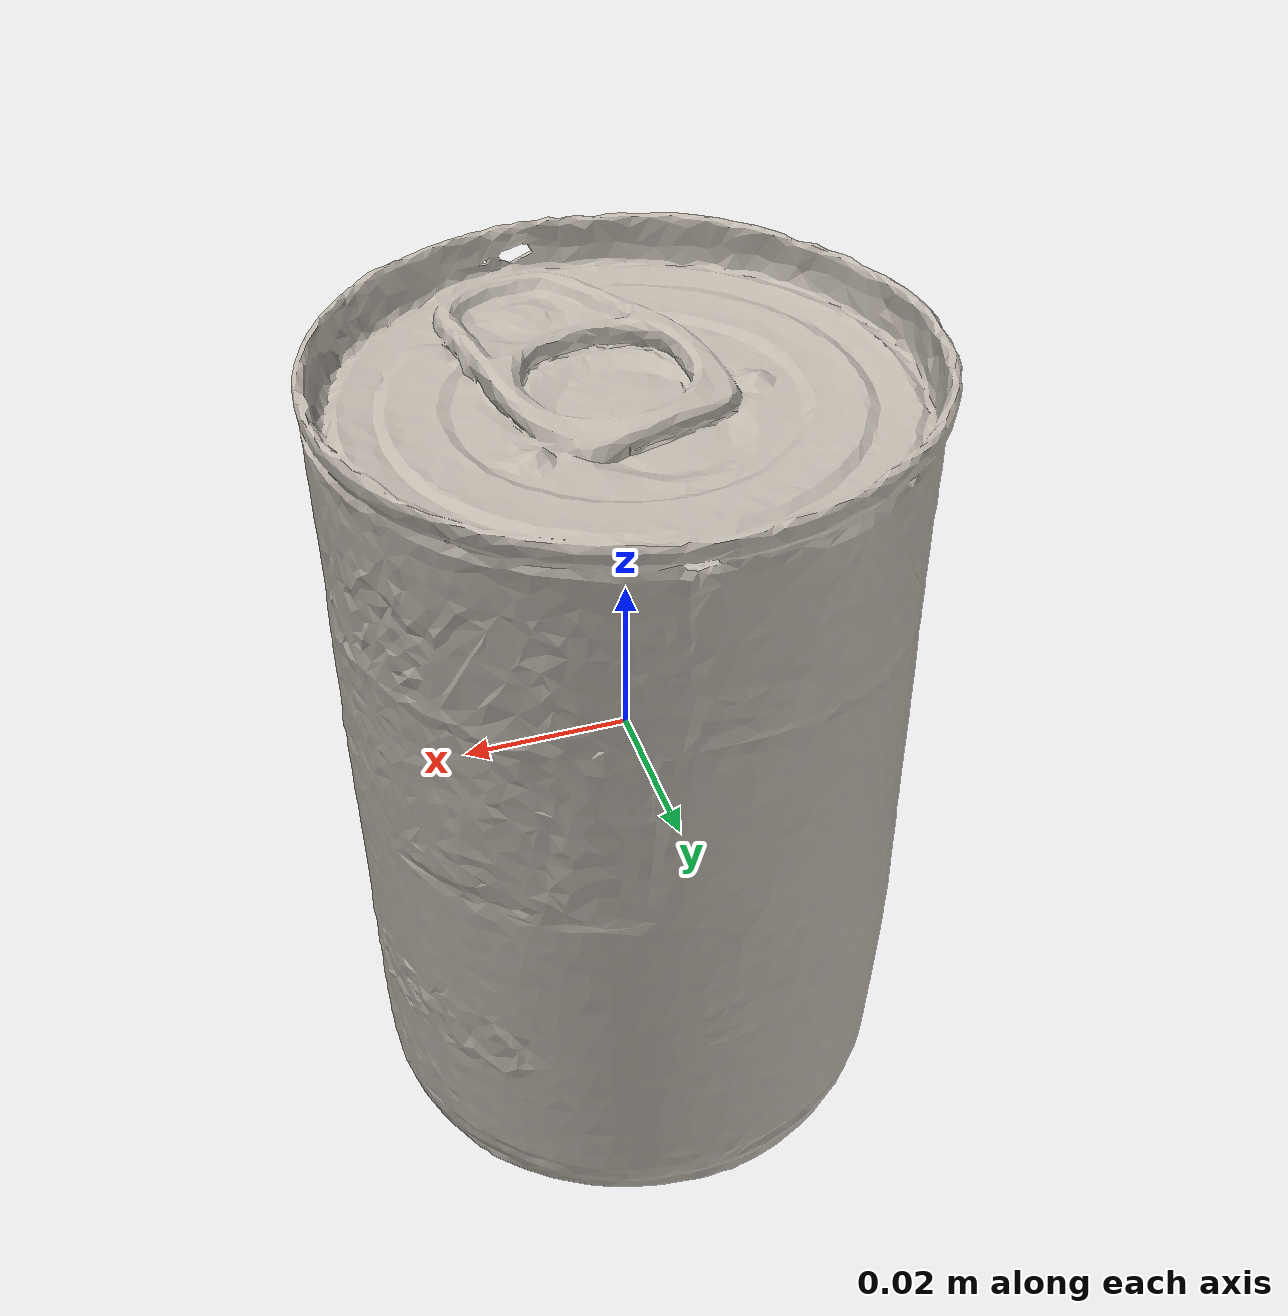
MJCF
<mujoco model="005_tomato_soup_can">
  <compiler meshdir="assets" texturedir="assets"/>
  <default>
    <default class="visual">
      <geom group="2" type="mesh" contype="0" conaffinity="0"/>
    </default>
    <default class="collision">
      <geom group="3" type="mesh"/>
    </default>
  </default>
  <asset>
    <texture type="2d" name="texture_map" file="texture_map.png"/>
    <material name="material_0" texture="texture_map" specular="0.5" shininess="0.5"/>
    <mesh file="005_tomato_soup_can.obj"/>
    <mesh file="005_tomato_soup_can_collision_0.obj"/>
    <mesh file="005_tomato_soup_can_collision_1.obj"/>
    <mesh file="005_tomato_soup_can_collision_2.obj"/>
    <mesh file="005_tomato_soup_can_collision_3.obj"/>
    <mesh file="005_tomato_soup_can_collision_4.obj"/>
    <mesh file="005_tomato_soup_can_collision_5.obj"/>
    <mesh file="005_tomato_soup_can_collision_6.obj"/>
    <mesh file="005_tomato_soup_can_collision_7.obj"/>
    <mesh file="005_tomato_soup_can_collision_8.obj"/>
    <mesh file="005_tomato_soup_can_collision_9.obj"/>
    <mesh file="005_tomato_soup_can_collision_10.obj"/>
    <mesh file="005_tomato_soup_can_collision_11.obj"/>
    <mesh file="005_tomato_soup_can_collision_12.obj"/>
    <mesh file="005_tomato_soup_can_collision_13.obj"/>
    <mesh file="005_tomato_soup_can_collision_14.obj"/>
    <mesh file="005_tomato_soup_can_collision_15.obj"/>
    <mesh file="005_tomato_soup_can_collision_16.obj"/>
    <mesh file="005_tomato_soup_can_collision_17.obj"/>
    <mesh file="005_tomato_soup_can_collision_18.obj"/>
    <mesh file="005_tomato_soup_can_collision_19.obj"/>
    <mesh file="005_tomato_soup_can_collision_20.obj"/>
    <mesh file="005_tomato_soup_can_collision_21.obj"/>
    <mesh file="005_tomato_soup_can_collision_22.obj"/>
    <mesh file="005_tomato_soup_can_collision_23.obj"/>
    <mesh file="005_tomato_soup_can_collision_24.obj"/>
    <mesh file="005_tomato_soup_can_collision_25.obj"/>
    <mesh file="005_tomato_soup_can_collision_26.obj"/>
    <mesh file="005_tomato_soup_can_collision_27.obj"/>
    <mesh file="005_tomato_soup_can_collision_28.obj"/>
    <mesh file="005_tomato_soup_can_collision_29.obj"/>
    <mesh file="005_tomato_soup_can_collision_30.obj"/>
    <mesh file="005_tomato_soup_can_collision_31.obj"/>
    <mesh file="005_tomato_soup_can_collision_32.obj"/>
    <mesh file="005_tomato_soup_can_collision_33.obj"/>
    <mesh file="005_tomato_soup_can_collision_34.obj"/>
    <mesh file="005_tomato_soup_can_collision_35.obj"/>
    <mesh file="005_tomato_soup_can_collision_36.obj"/>
    <mesh file="005_tomato_soup_can_collision_37.obj"/>
    <mesh file="005_tomato_soup_can_collision_38.obj"/>
    <mesh file="005_tomato_soup_can_collision_39.obj"/>
    <mesh file="005_tomato_soup_can_collision_40.obj"/>
    <mesh file="005_tomato_soup_can_collision_41.obj"/>
  </asset>
  <worldbody>
    <body name="005_tomato_soup_can">
      <freejoint/>
      <geom material="material_0" mesh="005_tomato_soup_can" class="visual" mass="0.349"/>
      <geom mesh="005_tomato_soup_can_collision_0" rgba="0.9226323789897403 0.9884231499538048 0.2133746818497495 1" class="collision"/>
      <geom mesh="005_tomato_soup_can_collision_1" rgba="0.2837774521147435 0.15735774998357988 0.8928365768205856 1" class="collision"/>
      <geom mesh="005_tomato_soup_can_collision_2" rgba="0.6976984283389644 0.7701539414554267 0.9543579873629722 1" class="collision"/>
      <geom mesh="005_tomato_soup_can_collision_3" rgba="0.8362574815873757 0.051201239599708126 0.4193970150741001 1" class="collision"/>
      <geom mesh="005_tomato_soup_can_collision_4" rgba="0.8349921992277874 0.8617675193944869 0.3699830676847453 1" class="collision"/>
      <geom mesh="005_tomato_soup_can_collision_5" rgba="0.4887580656316117 0.761383308994549 0.2988439721018844 1" class="collision"/>
      <geom mesh="005_tomato_soup_can_collision_6" rgba="0.32726011663914 0.739399745494625 0.6146540261443452 1" class="collision"/>
      <geom mesh="005_tomato_soup_can_collision_7" rgba="0.4070689822917286 0.15272991792154678 0.36546629486044535 1" class="collision"/>
      <geom mesh="005_tomato_soup_can_collision_8" rgba="0.6518073086800159 0.9399575668448497 0.7846464485229012 1" class="collision"/>
      <geom mesh="005_tomato_soup_can_collision_9" rgba="0.08661140365339237 0.4403545730226228 0.35871672089783824 1" class="collision"/>
      <geom mesh="005_tomato_soup_can_collision_10" rgba="0.2007157633975648 0.6942162013938402 0.9668234703934723 1" class="collision"/>
      <geom mesh="005_tomato_soup_can_collision_11" rgba="0.8637941063984143 0.9726387095225054 0.49955639561985044 1" class="collision"/>
      <geom mesh="005_tomato_soup_can_collision_12" rgba="0.8019615818313274 0.009188966346292404 0.3102942352096062 1" class="collision"/>
      <geom mesh="005_tomato_soup_can_collision_13" rgba="0.9084420303643109 0.015985873300326636 0.976381371373886 1" class="collision"/>
      <geom mesh="005_tomato_soup_can_collision_14" rgba="0.8066305333550813 0.419107341063925 0.059337857646378 1" class="collision"/>
      <geom mesh="005_tomato_soup_can_collision_15" rgba="0.05758910263022232 0.8459703774710902 0.7188770375292254 1" class="collision"/>
      <geom mesh="005_tomato_soup_can_collision_16" rgba="0.5775648189717091 0.6220051516449406 0.9162611285820533 1" class="collision"/>
      <geom mesh="005_tomato_soup_can_collision_17" rgba="0.03266684585247259 0.19298039269606815 0.22664077054545495 1" class="collision"/>
      <geom mesh="005_tomato_soup_can_collision_18" rgba="0.650419419889045 0.08091492661875377 0.7988037250577551 1" class="collision"/>
      <geom mesh="005_tomato_soup_can_collision_19" rgba="0.2829991074514808 0.49710733968265486 0.34491188061708744 1" class="collision"/>
      <geom mesh="005_tomato_soup_can_collision_20" rgba="0.3131068091040581 0.625763686260661 0.05959858318328204 1" class="collision"/>
      <geom mesh="005_tomato_soup_can_collision_21" rgba="0.5411125798899163 0.08481567628068964 0.9903314426672494 1" class="collision"/>
      <geom mesh="005_tomato_soup_can_collision_22" rgba="0.49679813856398736 0.19838527855645027 0.8616109986265071 1" class="collision"/>
      <geom mesh="005_tomato_soup_can_collision_23" rgba="0.7240241044339323 0.4211581886862221 0.7415126269018822 1" class="collision"/>
      <geom mesh="005_tomato_soup_can_collision_24" rgba="0.3236655597476582 0.5271894752812826 0.11583892959424913 1" class="collision"/>
      <geom mesh="005_tomato_soup_can_collision_25" rgba="0.2778932518599758 0.4148118635208905 0.9365950076718506 1" class="collision"/>
      <geom mesh="005_tomato_soup_can_collision_26" rgba="0.8208679868587343 0.32195576036429785 0.5118516414551253 1" class="collision"/>
      <geom mesh="005_tomato_soup_can_collision_27" rgba="0.4179220169767476 0.707997041625418 0.800825666080175 1" class="collision"/>
      <geom mesh="005_tomato_soup_can_collision_28" rgba="0.8637827639911178 0.8969948069344977 0.7617616710842942 1" class="collision"/>
      <geom mesh="005_tomato_soup_can_collision_29" rgba="0.2173005669328364 0.3853432530634212 0.8430327887390721 1" class="collision"/>
      <geom mesh="005_tomato_soup_can_collision_30" rgba="0.8493404003441576 0.30166089301825516 0.8517008982473995 1" class="collision"/>
      <geom mesh="005_tomato_soup_can_collision_31" rgba="0.6636183277628734 0.8225019833418241 0.1154491324607766 1" class="collision"/>
      <geom mesh="005_tomato_soup_can_collision_32" rgba="0.8360310092256775 0.6847015517043423 0.07872515905750299 1" class="collision"/>
      <geom mesh="005_tomato_soup_can_collision_33" rgba="0.005180742903860613 0.9026615365043568 0.8583291971347067 1" class="collision"/>
      <geom mesh="005_tomato_soup_can_collision_34" rgba="0.10522196324148181 0.6380060957847931 0.6159591279603945 1" class="collision"/>
      <geom mesh="005_tomato_soup_can_collision_35" rgba="0.9165266973671549 0.351572983359251 0.02922580284812848 1" class="collision"/>
      <geom mesh="005_tomato_soup_can_collision_36" rgba="0.2679078622247515 0.3240627816764614 0.06422419520304723 1" class="collision"/>
      <geom mesh="005_tomato_soup_can_collision_37" rgba="0.7815288402973339 0.7191704757573784 0.8139874068510192 1" class="collision"/>
      <geom mesh="005_tomato_soup_can_collision_38" rgba="0.09684998436024705 0.18489771126141696 0.9248195176911519 1" class="collision"/>
      <geom mesh="005_tomato_soup_can_collision_39" rgba="0.6255048228641252 0.6124669112140175 0.43454031093453815 1" class="collision"/>
      <geom mesh="005_tomato_soup_can_collision_40" rgba="0.8166388347033485 0.21399001280655583 0.901150916260084 1" class="collision"/>
      <geom mesh="005_tomato_soup_can_collision_41" rgba="0.44465010147353645 0.24104523852257032 0.5590969636141309 1" class="collision"/>
      <site name="barcode" pos="-0.025168 -0.023411 -0.028418" quat="0.653281 0.653281 -0.270598 -0.270598" group="4" rgba="1 0 0 1"/>
    </body>
  </worldbody>
</mujoco>
